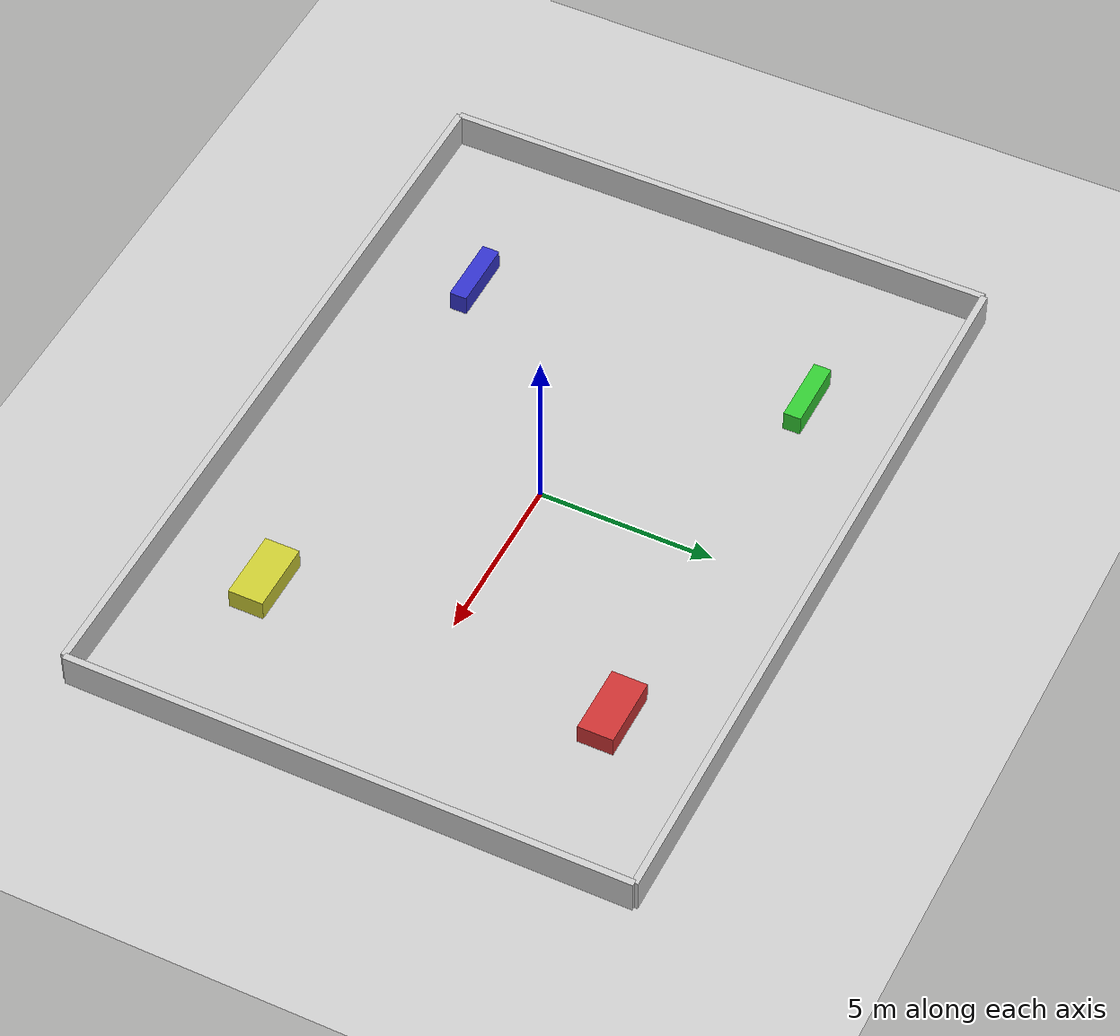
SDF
<?xml version="1.0" ?>
<sdf version="1.6">
  <world name="hospital_simple">
    <include><uri>model://ground_plane</uri></include>
    <include><uri>model://sun</uri></include>

    <physics type="ode">
      <real_time_update_rate>1000</real_time_update_rate>
      <max_step_size>0.001</max_step_size>
    </physics>

    <!-- OUTER BOUNDARY WALLS -->
    <model name="wall_south">
      <static>true</static>
      <pose>0 -8 0.5 0 0 0</pose>
      <link name="link">
        <collision name="c"><geometry><box><size>22 0.2 1</size></box></geometry></collision>
        <visual name="v"><geometry><box><size>22 0.2 1</size></box></geometry>
          <material><ambient>0.8 0.8 0.8 1</ambient></material></visual>
      </link>
    </model>

    <model name="wall_north">
      <static>true</static>
      <pose>0 8 0.5 0 0 0</pose>
      <link name="link">
        <collision name="c"><geometry><box><size>22 0.2 1</size></box></geometry></collision>
        <visual name="v"><geometry><box><size>22 0.2 1</size></box></geometry>
          <material><ambient>0.8 0.8 0.8 1</ambient></material></visual>
      </link>
    </model>

    <model name="wall_west">
      <static>true</static>
      <pose>-11 0 0.5 0 0 0</pose>
      <link name="link">
        <collision name="c"><geometry><box><size>0.2 16 1</size></box></geometry></collision>
        <visual name="v"><geometry><box><size>0.2 16 1</size></box></geometry>
          <material><ambient>0.8 0.8 0.8 1</ambient></material></visual>
      </link>
    </model>

    <model name="wall_east">
      <static>true</static>
      <pose>11 0 0.5 0 0 0</pose>
      <link name="link">
        <collision name="c"><geometry><box><size>0.2 16 1</size></box></geometry></collision>
        <visual name="v"><geometry><box><size>0.2 16 1</size></box></geometry>
          <material><ambient>0.8 0.8 0.8 1</ambient></material></visual>
      </link>
    </model>

    <!-- PHARMACY -->
    <model name="pharmacy_counter">
      <static>true</static>
      <pose>-6 5 0.3 0 0 0</pose>
      <link name="link">
        <collision name="c"><geometry><box><size>2 0.5 0.6</size></box></geometry></collision>
        <visual name="v"><geometry><box><size>2 0.5 0.6</size></box></geometry>
          <material><ambient>0.2 0.8 0.2 1</ambient></material></visual>
      </link>
    </model>

    <!-- ICU -->
    <model name="icu_bed">
      <static>true</static>
      <pose>6 5 0.3 0 0 0</pose>
      <link name="link">
        <collision name="c"><geometry><box><size>2 1 0.6</size></box></geometry></collision>
        <visual name="v"><geometry><box><size>2 1 0.6</size></box></geometry>
          <material><ambient>0.8 0.2 0.2 1</ambient></material></visual>
      </link>
    </model>

    <!-- RECEPTION -->
    <model name="reception_desk">
      <static>true</static>
      <pose>-6 -5 0.3 0 0 0</pose>
      <link name="link">
        <collision name="c"><geometry><box><size>2 0.5 0.6</size></box></geometry></collision>
        <visual name="v"><geometry><box><size>2 0.5 0.6</size></box></geometry>
          <material><ambient>0.2 0.2 0.8 1</ambient></material></visual>
      </link>
    </model>

    <!-- WARD -->
    <model name="ward_bed">
      <static>true</static>
      <pose>6 -5 0.3 0 0 0</pose>
      <link name="link">
        <collision name="c"><geometry><box><size>2 1 0.6</size></box></geometry></collision>
        <visual name="v"><geometry><box><size>2 1 0.6</size></box></geometry>
          <material><ambient>0.8 0.8 0.2 1</ambient></material></visual>
      </link>
    </model>

  </world>
</sdf>
